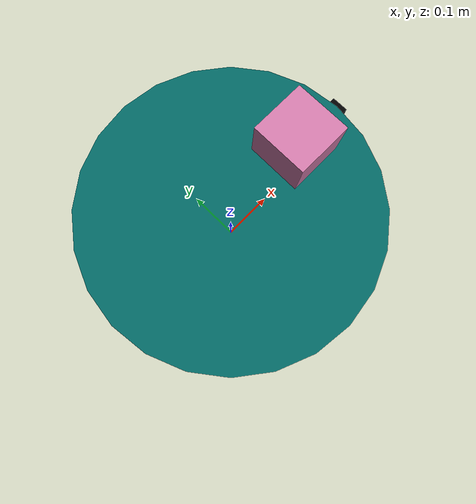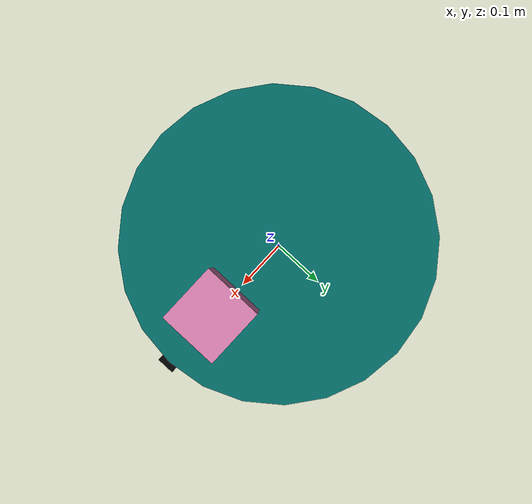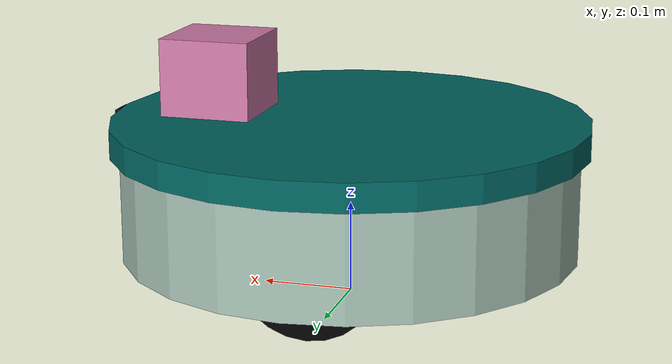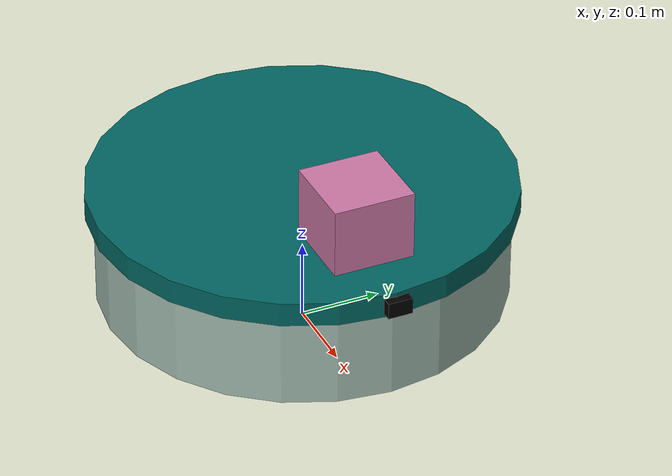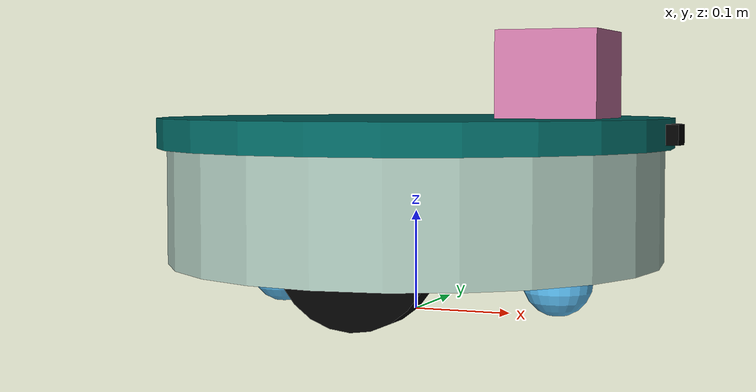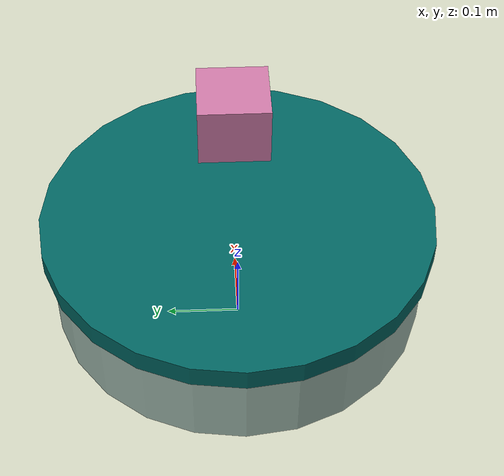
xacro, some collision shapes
<?xml version='1.0'?>

<robot name="my_robot" xmlns:xacro="http://www.ros.org/wiki/xacro">

  <xacro:include filename="$(find my_robot)/urdf/my_robot.gazebo" />
  <xacro:include filename="$(find my_robot)/urdf/materials.xacro" />

  <link name="robot_footprint"></link>

  <joint name="robot_footprint_joint" type="fixed">
    <origin xyz="0 0 0.08" rpy="0 0 0" />
    <parent link="robot_footprint"/>
    <child link="chassis" />
  </joint>

  <link name='chassis'>
    <pose>0 0 0.1 0 0 0</pose>

    <inertial>
      <mass value="15.0"/>
      <origin xyz="0.0 0 0" rpy=" 0 0 0"/>
      <inertia
          ixx="0.1" ixy="0" ixz="0"
          iyy="0.1" iyz="0"
          izz="0.1"
      />
    </inertial>

    <collision name='collision'>
      <origin xyz="0 0 0.03" rpy=" 0 0 0"/>
      <geometry>
        <cylinder length="0.12" radius="0.25"/>
      </geometry>
    </collision>

    <visual name='chassis_visual'>
      <origin xyz="0 0 0.03" rpy=" 0 0 0"/>
      <geometry>
        <cylinder length="0.12" radius="0.25"/>
      </geometry>
      <material name="Chassis"/>
    </visual>

    <collision name='back_caster_collision'>
      <origin xyz="-0.15 0 -0.045" rpy=" 0 0 0"/>
      <geometry>
        <sphere radius="0.0349"/>
      </geometry>
    </collision>

    <visual name='back_caster_visual'>
      <origin xyz="-0.15 0 -0.045" rpy=" 0 0 0"/>
      <geometry>
        <sphere radius="0.035"/>
      </geometry>
    </visual>

    <collision name='front_caster_collision'>
      <origin xyz="0.15 0 -0.045" rpy=" 0 0 0"/>
      <geometry>
        <sphere radius="0.0349"/>
      </geometry>
    </collision>

    <visual name='front_caster_visual'>
      <origin xyz="0.15 0 -0.045" rpy=" 0 0 0"/>
      <geometry>
        <sphere radius="0.035"/>
      </geometry>
    </visual>

  </link>

  <!-- ====================top ring===================== -->
  <link name='top_ring'>

	<pose>0 0 0.1 0 0 0</pose>

    <inertial>
      <mass value="2.0"/>
      <origin xyz="0.0 0 0" rpy=" 0 0 0"/>
      <inertia
          ixx="0.1" ixy="0" ixz="0"
          iyy="0.1" iyz="0"
          izz="0.1"
      />
    </inertial>

    <collision name='top_ring_collision'>
      <origin xyz="0 0 0.1" rpy=" 0 0 0"/>
      <geometry>
        <cylinder length="0.03" radius="0.26"/>
      </geometry>
    </collision>

    <visual name='top_ring_visual'>
      <origin xyz="0 0 0.1" rpy=" 0 0 0"/>
      <geometry>
        <cylinder length="0.03" radius="0.26"/>
      </geometry>
      <material name="Ring"/>
    </visual>
  </link>

  <joint type="fixed" name="top_ring_hinge">
    <origin xyz="0 0 0" rpy="0 0 0"/>
    <child link="top_ring"/>
    <parent link="chassis"/>
    <axis xyz="0 0 0" rpy="0 0 0"/>
    <limit effort="10000" velocity="1000"/>
    <dynamics damping="1.0" friction="1.0"/>
  </joint>

  <!-- ====================left wheel===================== -->
  <link name='left_wheel'>

	<pose>0 0 0.1 0 0 0</pose>

    <inertial>
      <mass value="5.0"/>
      <origin xyz="0.0 0 0" rpy=" 0 0 0"/>
      <inertia
          ixx="0.1" ixy="0" ixz="0"
          iyy="0.1" iyz="0"
          izz="0.1"
      />
    </inertial>

    <collision name='left_wheel_collision'>
      <origin xyz="0 0 0" rpy=" 0 1.5707 1.5707"/>
      <geometry>
        <cylinder length="0.03" radius="0.08"/>
      </geometry>
    </collision>

    <visual name='left_wheel_visual'>
      <origin xyz="0 0 0" rpy=" 0 1.5707 1.5707"/>
      <geometry>
        <cylinder length="0.03" radius="0.08"/>
      </geometry>
      <material name="Black"/>
    </visual>
  </link>

  <joint type="continuous" name="left_wheel_hinge">
    <origin xyz="0 0.15 0" rpy="0 0 0"/>
    <child link="left_wheel"/>
    <parent link="chassis"/>
    <axis xyz="0 1 0" rpy="0 0 0"/>
    <limit effort="10000" velocity="1000"/>
    <dynamics damping="1.0" friction="1.0"/>
  </joint>

  <!-- ====================right wheel===================== -->
  <link name='right_wheel'>

	<pose>0 0 0.1 0 0 0</pose>

    <inertial>
      <mass value="5.0"/>
      <origin xyz="0.0 0 0" rpy=" 0 0 0"/>
      <inertia
          ixx="0.1" ixy="0" ixz="0"
          iyy="0.1" iyz="0"
          izz="0.1"
      />
    </inertial>

    <collision name='right_wheel_collision'>
      <origin xyz="0 0 0" rpy=" 0 1.5707 1.5707"/>
      <geometry>
        <cylinder length="0.03" radius="0.08"/>
      </geometry>
    </collision>

    <visual name='right_wheel_visual'>
      <origin xyz="0 0 0" rpy=" 0 1.5707 1.5707"/>
      <geometry>
        <cylinder length="0.03" radius="0.08"/>
      </geometry>
      <material name="Black"/>
    </visual>
  </link>

  <joint type="continuous" name="right_wheel_hinge">
    <origin xyz="0 -0.15 0" rpy="0 0 0"/>
    <child link="right_wheel"/>
    <parent link="chassis"/>
    <axis xyz="0 1 0" rpy="0 0 0"/>
    <limit effort="10000" velocity="1000"/>
    <dynamics damping="1.0" friction="1.0"/>
  </joint>

  <!--  ======================camera============================  -->
  <link name='camera'>
    <pose>0 0 0.1 0 0 0</pose>

    <inertial>
      <mass value="0.1"/>
      <origin xyz="0.05 0.05 0.05" rpy=" 0 0 0"/>
      <inertia
          ixx="1e-6" ixy="0" ixz="0"
          iyy="1e-6" iyz="0"
          izz="1e-6"
      />
    </inertial>

    <collision name='camera_collision'>
      <origin xyz="0 0 0" rpy=" 0 0 0"/>
      <geometry>
        <box size="0.02 0.03 0.02" />
      </geometry>
    </collision>

    <visual name='camera_visual'>
      <origin xyz="0 0 0" rpy=" 0 0 0"/>
      <geometry>
        <box size="0.02 0.03 0.02" />
      </geometry>
      <material name="Black"/>
    </visual>
  </link>

  <joint type="fixed" name="camera_joint">
    <origin xyz="0.26 0 0.1" rpy="0 0 0"/>
    <child link="camera"/>
    <parent link="chassis"/>
    <axis xyz="0 1 0" rpy="0 0 0"/>
  </joint>

  <!--  ======================Hokuyo_Lidar============================  -->
  <link name='hokuyo'>
    <pose>0 0 0.1 0 0 0</pose>

    <inertial>
      <mass value="1e-5"/>
      <origin xyz="0 0 0" rpy=" 0 0 0"/>
      <inertia
          ixx="1e-6" ixy="0" ixz="0"
          iyy="1e-6" iyz="0"
          izz="1e-6"
      />
    </inertial>

    <collision name='hokuyo_collision'>
      <origin xyz="0 0 0" rpy=" 0 0 0"/>
      <geometry>
        <box size="0.1 0.1 0.1"/>
      </geometry>
    </collision>

    <visual name='hokuyo_visual'>
      <origin xyz="0 0 0" rpy=" 0 0 0"/>
      <geometry>
        <mesh filename = "package://my_robot/meshes/hokuyo.dae" />
      </geometry>
    </visual>
  </link>

  <joint type="fixed" name="hokuyo_joint">
    <origin xyz="0.15 0 0.15" rpy="0 0 0"/>
    <child link="hokuyo"/>
    <parent link="chassis"/>
    <axis xyz="0 1 0" rpy="0 0 0"/>
  </joint>

</robot>

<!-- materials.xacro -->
<robot>

<!-- ===================links rviz colors========================= -->
	<material name="Black">
		<color rgba="${0/255} ${0/255} ${0/255} 1.0"/>
	</material>

	<material name="Ring">
		<color rgba="${0/255} ${100/255} ${96/255} 1.0"/>
	</material>

	<material name="Chassis">
		<color rgba="${162/255} ${188/255} ${176/255} 1.0"/>
	</material>

<!-- ===================links gazebo colors========================= -->
  <gazebo reference="chassis">
  <visual>
    <material>
      <ambient>0.6353 0.7373 0.6902 1.0</ambient>
      <diffuse>0.6353 0.7373 0.6902 1.0</diffuse>
      <specular>0.6353 0.7373 0.6902 1.0</specular>
      <emissive>0.0 0.0 0.0 0.0</emissive>
    </material>
  </visual>
  </gazebo>

  <gazebo reference="top_ring">
  <visual>
    <material>
      <ambient>0.0 0.3922 0.3765 1.0</ambient>
      <diffuse>0.0 0.3922 0.3765 1.0</diffuse>
      <specular>0.0 0.3922 0.3765 1.0</specular>
      <emissive>0.0 0.0 0.0 0.0</emissive>
    </material>
  </visual>
  </gazebo>

  <gazebo reference="left_wheel">
  <visual>
    <material>
      <ambient>0.0 0.0 0.0 1.0</ambient>
      <diffuse>0.0 0.0 0.0 1.0</diffuse>
      <specular>0.0 0.0 0.0 1.0</specular>
      <emissive>0.0 0.0 0.0 0.0</emissive>
    </material>
  </visual>
  </gazebo>

  <gazebo reference="right_wheel">
  <visual>
    <material>
      <ambient>0.0 0.0 0.0 1.0</ambient>
      <diffuse>0.0 0.0 0.0 1.0</diffuse>
      <specular>0.0 0.0 0.0 1.0</specular>
      <emissive>0.0 0.0 0.0 0.0</emissive>
    </material>
  </visual>
  </gazebo>

    <gazebo reference="camera">
    <visual>
     <material>
      <ambient>0.0 0.0 0.0 1.0</ambient>
      <diffuse>0.0 0.0 0.0 1.0</diffuse>
      <specular>0.0 0.0 0.0 1.0</specular>
      <emissive>0.0 0.0 0.0 0.0</emissive>
     </material>
    </visual>
    </gazebo>

</robot>
